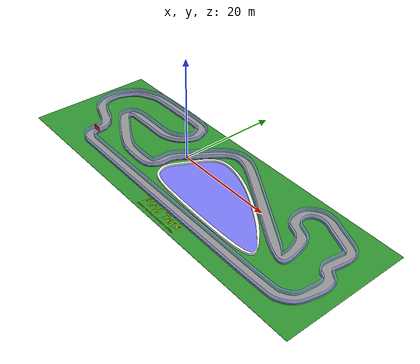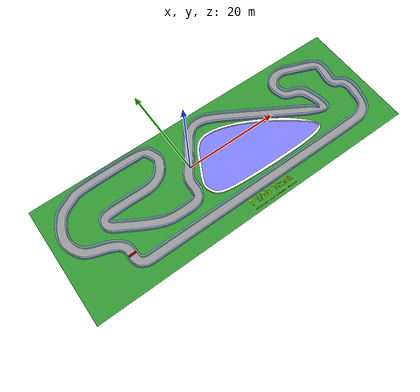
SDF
<sdf version='1.6'>
  <world name='default'>
    <gravity>0 0 -9.8</gravity>

    <model name='part0.obj'>
      <static>1</static>
      <pose frame=''>0 0 0 0 0 0</pose>
      <link name='link_d0'>
        <inertial>
          <mass>0</mass>
          <inertia>
            <ixx>0.166667</ixx> <ixy>0</ixy> <ixz>0</ixz>
            <iyy>0.166667</iyy> <iyz>0</iyz> <izz>0.166667</izz>
          </inertia>
        </inertial>
        <visual name='visual'>
          <geometry>
            <mesh>
              <scale>1 1 1</scale>
              <uri>part0.obj</uri>
            </mesh>
          </geometry>
          <material>
            <ambient>1 1 1 1</ambient>
            <diffuse>1 1 1 1</diffuse>
            <specular>0.1 0.1 0.1 1</specular>
            <emissive>0 0 0 0</emissive>
          </material>
        </visual>
      </link>
    </model>

    <model name='part1.obj'>
      <static>1</static>
      <pose frame=''>0 0 0 0 0 0</pose>
      <link name='link_d1'>
        <inertial>
          <mass>0</mass>
          <inertia>
            <ixx>0.166667</ixx> <ixy>0</ixy> <ixz>0</ixz>
            <iyy>0.166667</iyy> <iyz>0</iyz> <izz>0.166667</izz>
          </inertia>
        </inertial>
        <visual name='visual'>
          <geometry>
            <mesh>
              <scale>1 1 1</scale>
              <uri>part1.obj</uri>
            </mesh>
          </geometry>
          <material>
            <ambient>1 1 1 1</ambient>
            <diffuse>0.2 0.6 0.2 1</diffuse>
            <specular>0.1 0.1 0.1 1</specular>
            <emissive>0 0 0 0</emissive>
          </material>
        </visual>
      </link>
    </model>

    <model name='part2.obj'>
      <static>1</static>
      <pose frame=''>0 0 0 0 0 0</pose>
      <link name='link_d2'>
        <inertial>
          <mass>0</mass>
          <inertia>
            <ixx>0.166667</ixx> <ixy>0</ixy> <ixz>0</ixz>
            <iyy>0.166667</iyy> <iyz>0</iyz> <izz>0.166667</izz>
          </inertia>
        </inertial>
        <visual name='visual'>
          <geometry>
            <mesh>
              <scale>1 1 1</scale>
              <uri>part2.obj</uri>
            </mesh>
          </geometry>
          <material>
            <ambient>1 1 1 1</ambient>
            <diffuse>1 1 0 1</diffuse>
            <specular>0.1 0.1 0.1 1</specular>
            <emissive>0 0 0 0</emissive>
          </material>
        </visual>
      </link>
    </model>

    <model name='part3.obj'>
      <static>1</static>
      <pose frame=''>0 0 0 0 0 0</pose>
      <link name='link_d3'>
        <inertial>
          <mass>0</mass>
          <inertia>
            <ixx>0.166667</ixx> <ixy>0</ixy> <ixz>0</ixz>
            <iyy>0.166667</iyy> <iyz>0</iyz> <izz>0.166667</izz>
          </inertia>
        </inertial>
        <visual name='visual'>
          <geometry>
            <mesh>
              <scale>1 1 1</scale>
              <uri>part3.obj</uri>
            </mesh>
          </geometry>
          <material>
            <ambient>1 1 1 1</ambient>
            <diffuse>1 1 0 1</diffuse>
            <specular>0.1 0.1 0.1 1</specular>
            <emissive>0 0 0 0</emissive>
          </material>
        </visual>
      </link>
    </model>

    <model name='part4.obj'>
      <static>1</static>
      <pose frame=''>0 0 0 0 0 0</pose>
      <link name='link_d4'>
        <inertial>
          <mass>0</mass>
          <inertia>
            <ixx>0.166667</ixx> <ixy>0</ixy> <ixz>0</ixz>
            <iyy>0.166667</iyy> <iyz>0</iyz> <izz>0.166667</izz>
          </inertia>
        </inertial>
        <visual name='visual'>
          <geometry>
            <mesh>
              <scale>1 1 1</scale>
              <uri>part4.obj</uri>
            </mesh>
          </geometry>
          <material>
            <ambient>1 1 1 1</ambient>
            <diffuse>0.5 0.5 1 1</diffuse>
            <specular>0.1 0.1 0.1 1</specular>
            <emissive>0 0 0 0</emissive>
          </material>
        </visual>
      </link>
    </model>

    <model name='part5.obj'>
      <static>1</static>
      <pose frame=''>0 0 0 0 0 0</pose>
      <link name='link_d5'>
        <inertial>
          <mass>0</mass>
          <inertia>
            <ixx>0.166667</ixx> <ixy>0</ixy> <ixz>0</ixz>
            <iyy>0.166667</iyy> <iyz>0</iyz> <izz>0.166667</izz>
          </inertia>
        </inertial>
        <collision concave='yes' name='collision_5'>
          <geometry>
            <mesh>
              <scale>1 1 1</scale>
              <uri>part5.obj</uri>
            </mesh>
          </geometry>
        </collision>
        <visual name='visual'>
          <geometry>
            <mesh>
              <scale>1 1 1</scale>
              <uri>part5.obj</uri>
            </mesh>
          </geometry>
          <material>
            <ambient>1 1 1 1</ambient>
            <diffuse>0.6 0.6 1 .6</diffuse>
            <specular>0.1 0.1 0.1 1</specular>
            <emissive>0 0 0 0</emissive>
          </material>
        </visual>
      </link>
    </model>

    <model name='part6.obj'>
      <static>1</static>
      <pose frame=''>0 0 0 0 0 0</pose>
      <link name='link_d6'>
        <inertial>
          <mass>0</mass>
          <inertia>
            <ixx>0.166667</ixx> <ixy>0</ixy> <ixz>0</ixz>
            <iyy>0.166667</iyy> <iyz>0</iyz> <izz>0.166667</izz>
          </inertia>
        </inertial>
        <visual name='visual'>
          <geometry>
            <mesh>
              <scale>1 1 1</scale>
              <uri>part6.obj</uri>
            </mesh>
          </geometry>
          <material>
            <ambient>1 1 1 1</ambient>
            <diffuse>0.6 0.6 0.6 1</diffuse>
            <specular>0.1 0.1 0.1 1</specular>
            <emissive>0 0 0 0</emissive>
          </material>
        </visual>
      </link>
    </model>

    <model name='wall_stop'>
      <static>1</static>
      <pose>-17.9 -8.17 0.5 0 0 0 </pose>
      <link name='wall_stop_link'>
        <inertial>
          <mass>0</mass>
          <inertia>
            <ixx>0.0</ixx> <ixy>0.0</ixy> <ixz>0.0</ixz>
            <iyy>0.0</iyy> <iyz>0.0</iyz> <izz>0.0</izz>
          </inertia>
        </inertial>
        <collision name='collision_wall'>
          <geometry>
            <box>
              <size>1.5 0.1 1.0</size>
            </box>
          </geometry>
        </collision>
        <visual name='visual_wall'>
          <geometry>
            <box>
              <size>1.5 0.1 1.0</size>
            </box>
          </geometry>
          <material>
            <ambient>1 0 0 1</ambient>
            <diffuse>1 0 0 1</diffuse>
            <specular>0.1 0.1 0.1 1</specular>
            <emissive>0 0 0 0</emissive>
          </material>
        </visual>
      </link>
    </model>

  </world>
</sdf>
